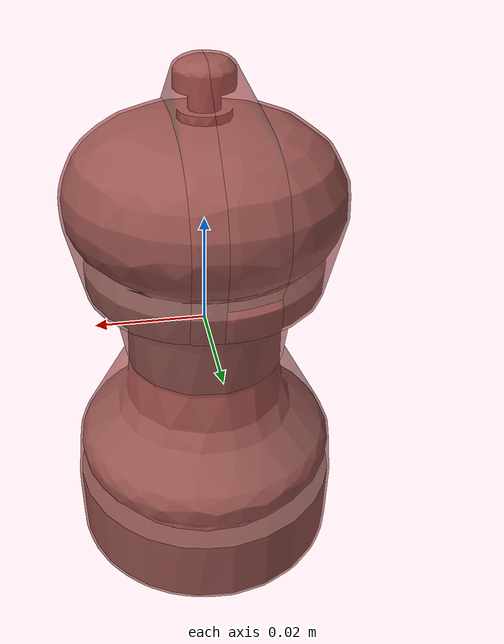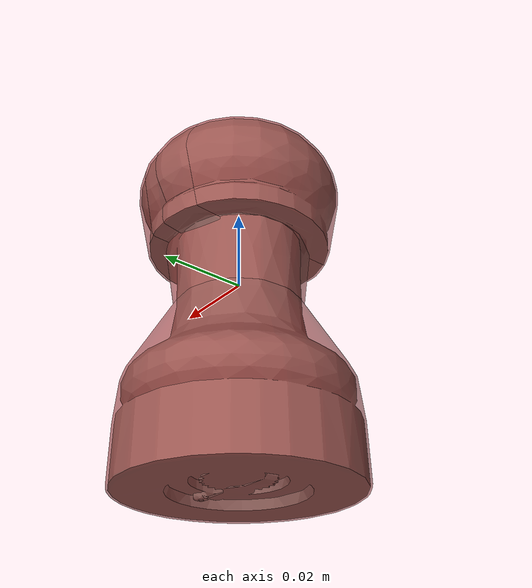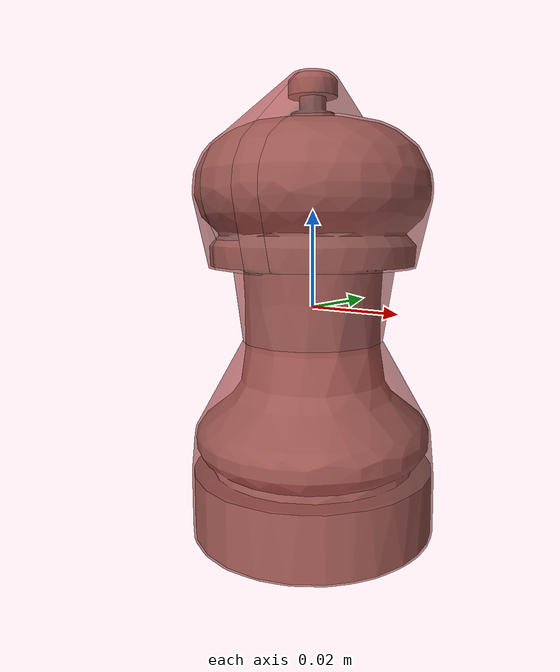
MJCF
<mujoco model="model">
  <option timestep="0.0005" gravity="0.0 0.0 -9.81"/>
  <compiler angle="radian"/>
  <asset>
    <mesh file="visual/SaltShaker002.obj" name="SaltShaker002_vis"/>
    <texture file="visual/T_BC001.png" name="SaltShaker002_material" type="2d"/>
    <material name="SaltShaker002_material" rgba="1 1 1 1.0" texture="SaltShaker002_material" shininess="0.29527562856674194" specular="0.3103448502657381"/>
    <mesh file="collision/collision_mesh_collision_0.obj" name="SaltShaker002_collision_mesh_0"/>
    <mesh file="collision/collision_mesh_collision_1.obj" name="SaltShaker002_collision_mesh_1"/>
    <mesh file="collision/collision_mesh_collision_2.obj" name="SaltShaker002_collision_mesh_2"/>
    <mesh file="collision/collision_mesh_collision_3.obj" name="SaltShaker002_collision_mesh_3"/>
    <mesh file="collision/collision_mesh_collision_4.obj" name="SaltShaker002_collision_mesh_4"/>
    <mesh file="collision/collision_mesh_collision_5.obj" name="SaltShaker002_collision_mesh_5"/>
    <mesh file="collision/collision_mesh_collision_6.obj" name="SaltShaker002_collision_mesh_6"/>
  </asset>
  <default>
    <default class="visual">
      <geom conaffinity="0" contype="0" group="1" type="mesh"/>
    </default>
    <default class="collision">
      <geom group="0" rgba="0.5 0 0 0.5" density="1000.0"/>
    </default>
    <default class="spawn">
      <geom group="0" rgba="1 1 1 0.5" contype="0" conaffinity="0"/>
      <site group="0" rgba="1 1 1 0.5"/>
    </default>
    <default class="region">
      <geom group="1" conaffinity="0" contype="0" rgba="0 1 0 0" mass="0"/>
    </default>
  </default>
  <worldbody>
    <body>
      <body name="object">
        <geom mesh="SaltShaker002_vis" type="mesh" solimp="0.998 0.998 0.001" solref="0.001 1" friction="0.95 0.3 0.1" class="visual" material="SaltShaker002_material"/>
        <geom class="region" name="reg_bbox" type="box" pos="1.0100000000009407e-06 1.150000000001844e-07 -2.2825000000000623e-05" size="0.02572295 0.025719594999999998 0.047538275000000005"/>
        <geom mesh="SaltShaker002_collision_mesh_0" type="mesh" class="collision"/>
        <geom mesh="SaltShaker002_collision_mesh_1" type="mesh" class="collision"/>
        <geom mesh="SaltShaker002_collision_mesh_2" type="mesh" class="collision"/>
        <geom mesh="SaltShaker002_collision_mesh_3" type="mesh" class="collision"/>
        <geom mesh="SaltShaker002_collision_mesh_4" type="mesh" class="collision"/>
        <geom mesh="SaltShaker002_collision_mesh_5" type="mesh" class="collision"/>
        <geom mesh="SaltShaker002_collision_mesh_6" type="mesh" class="collision"/>
      </body>
      <site rgba="0 1 0 0" size="0.005" pos="0.0767095999999999 0 0" name="anchor_site"/>
    </body>
  </worldbody>
  <actuator/>
</mujoco>
